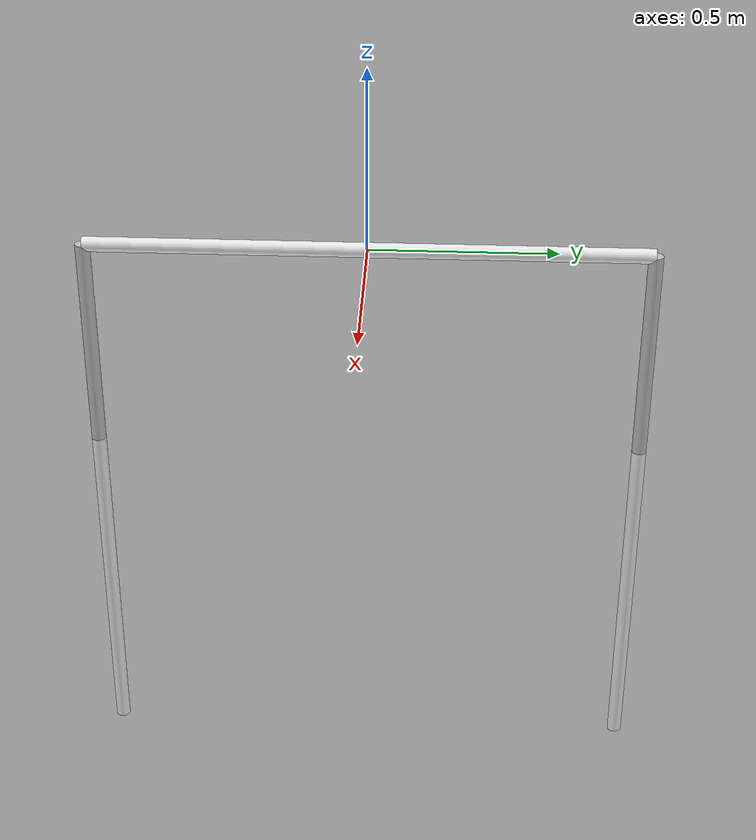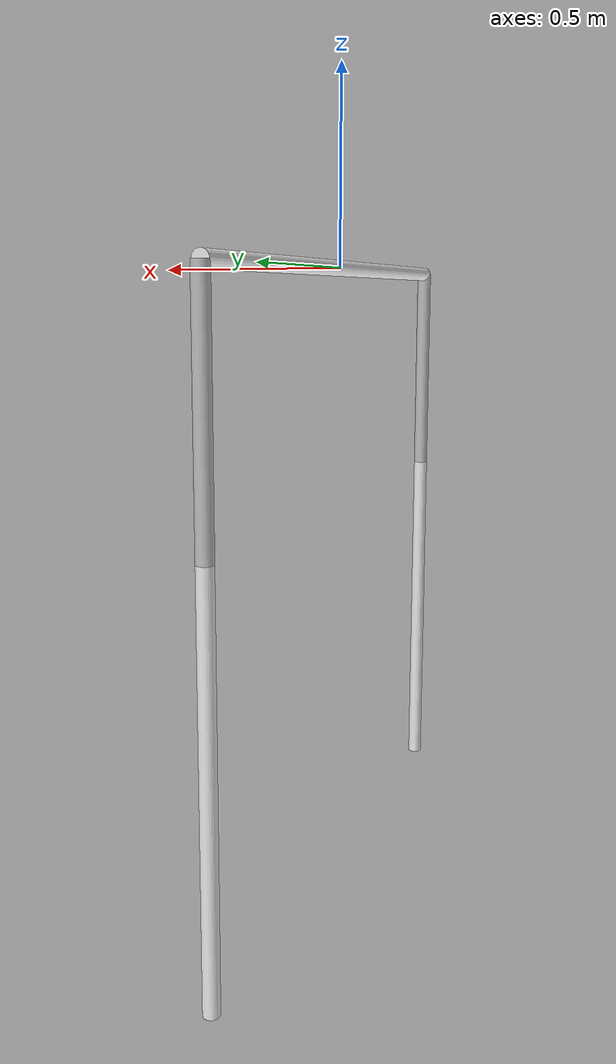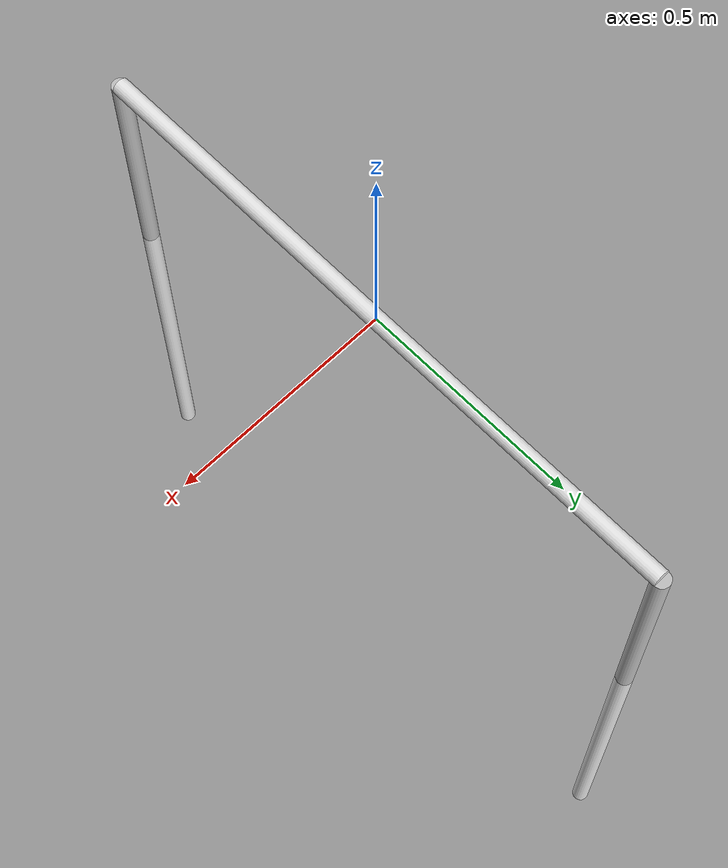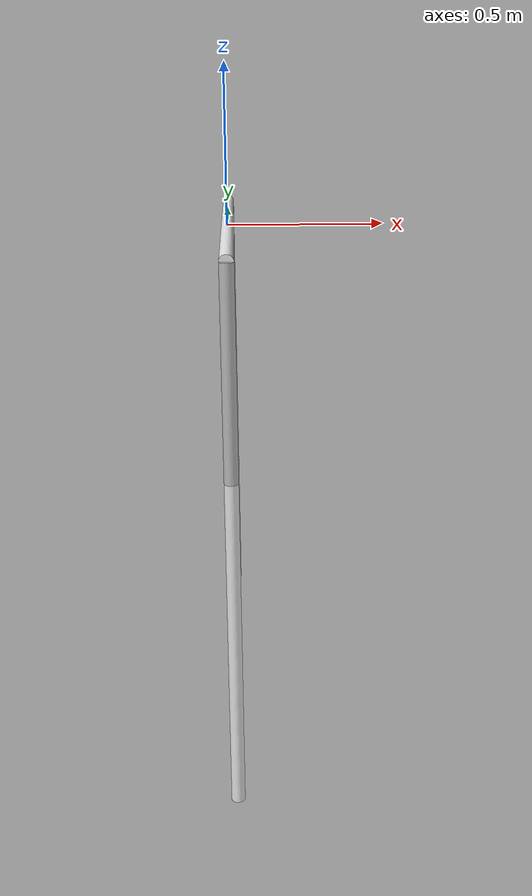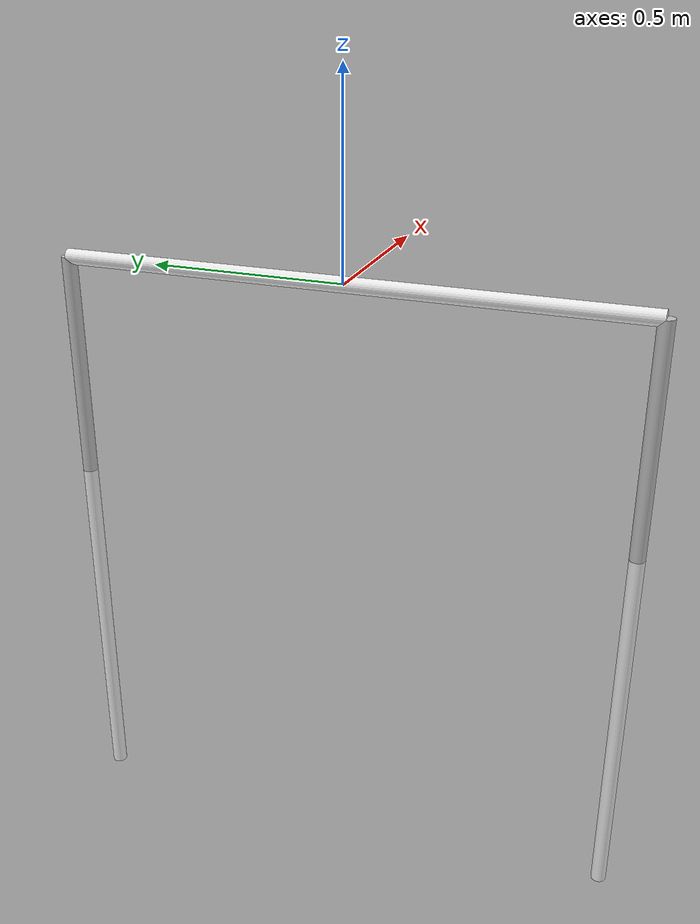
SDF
<?xml version="1.0"?>
<sdf version="1.9">
  <model name="sauvc_qual_gate">
    <static>true</static>
    <plugin filename="gz-sim-label-system" name="gz::sim::systems::Label">
      <label>1</label>
    </plugin>
    <link name="top_bar">
      <pose>0 0 0 1.570796 0 0</pose>
      <inertial>
        <pose>0 0 0 0 0 0</pose>
        <mass>1</mass>
        <inertia>
          <ixx>0.1876</ixx><ixy>0</ixy><ixz>0</ixz>
          <iyy>0.1876</iyy><iyz>0</iyz>
          <izz>0.0002</izz>
        </inertia>
      </inertial>
      <visual name="top_bar_visual">
        <pose>0 0 0 0 0 0</pose>
        <geometry><cylinder><radius>0.02</radius><length>1.5</length></cylinder></geometry>
        <material>
          <ambient>0.92 0.92 0.92 1</ambient>
          <diffuse>0.92 0.92 0.92 1</diffuse>
          <specular>0.2 0.2 0.2 1</specular>
          <emissive>0.23 0.23 0.23 1</emissive>
        </material>
      </visual>
      <collision name="top_bar_collision">
        <pose>0 0 0 0 0 0</pose>
        <geometry><cylinder><radius>0.02</radius><length>1.5</length></cylinder></geometry>
      </collision>
    </link>
    <link name="post_port_marking">
      <pose>0 0.75 -0.3 0 0 0</pose>
      <inertial>
        <pose>0 0 0 0 0 0</pose>
        <mass>0.5</mass>
        <inertia>
          <ixx>0.01505</ixx><ixy>0</ixy><ixz>0</ixz>
          <iyy>0.01505</iyy><iyz>0</iyz>
          <izz>0.0001</izz>
        </inertia>
      </inertial>
      <visual name="post_port_marking_visual">
        <pose>0 0 0 0 0 0</pose>
        <geometry><cylinder><radius>0.02</radius><length>0.6</length></cylinder></geometry>
        <material>
          <ambient>0.75 0.75 0.75 1</ambient>
          <diffuse>0.75 0.75 0.75 1</diffuse>
          <specular>0.25 0.25 0.25 1</specular>
          <emissive>0.12 0.12 0.12 1</emissive>
          <pbr>
            <metal>
              <albedo_map>model://sauvc_textures/gate_stripe_orange.png</albedo_map>
              <metalness>0.0</metalness>
              <roughness_map>model://sauvc_textures/rough_pvc.png</roughness_map>
              <normal_map>model://sauvc_textures/norm_pvc.png</normal_map>
            </metal>
          </pbr>
        </material>
      </visual>
      <collision name="post_port_marking_collision">
        <pose>0 0 0 0 0 0</pose>
        <geometry><cylinder><radius>0.02</radius><length>0.6</length></cylinder></geometry>
      </collision>
    </link>
    <link name="post_port_lower">
      <pose>0 0.75 -1.1 0 0 0</pose>
      <inertial>
        <pose>0 0 0 0 0 0</pose>
        <mass>0.5</mass>
        <inertia>
          <ixx>0.0417167</ixx><ixy>0</ixy><ixz>0</ixz>
          <iyy>0.0417167</iyy><iyz>0</iyz>
          <izz>0.0001</izz>
        </inertia>
      </inertial>
      <visual name="post_port_lower_visual">
        <pose>0 0 0 0 0 0</pose>
        <geometry><cylinder><radius>0.02</radius><length>1</length></cylinder></geometry>
        <material>
          <ambient>0.92 0.92 0.92 1</ambient>
          <diffuse>0.92 0.92 0.92 1</diffuse>
          <specular>0.2 0.2 0.2 1</specular>
          <emissive>0.23 0.23 0.23 1</emissive>
        </material>
      </visual>
      <collision name="post_port_lower_collision">
        <pose>0 0 0 0 0 0</pose>
        <geometry><cylinder><radius>0.02</radius><length>1</length></cylinder></geometry>
      </collision>
    </link>
    <link name="post_starboard_marking">
      <pose>0 -0.75 -0.3 0 0 0</pose>
      <inertial>
        <pose>0 0 0 0 0 0</pose>
        <mass>0.5</mass>
        <inertia>
          <ixx>0.01505</ixx><ixy>0</ixy><ixz>0</ixz>
          <iyy>0.01505</iyy><iyz>0</iyz>
          <izz>0.0001</izz>
        </inertia>
      </inertial>
      <visual name="post_starboard_marking_visual">
        <pose>0 0 0 0 0 0</pose>
        <geometry><cylinder><radius>0.02</radius><length>0.6</length></cylinder></geometry>
        <material>
          <ambient>0.75 0.75 0.75 1</ambient>
          <diffuse>0.75 0.75 0.75 1</diffuse>
          <specular>0.25 0.25 0.25 1</specular>
          <emissive>0.12 0.12 0.12 1</emissive>
          <pbr>
            <metal>
              <albedo_map>model://sauvc_textures/gate_stripe_orange.png</albedo_map>
              <metalness>0.0</metalness>
              <roughness_map>model://sauvc_textures/rough_pvc.png</roughness_map>
              <normal_map>model://sauvc_textures/norm_pvc.png</normal_map>
            </metal>
          </pbr>
        </material>
      </visual>
      <collision name="post_starboard_marking_collision">
        <pose>0 0 0 0 0 0</pose>
        <geometry><cylinder><radius>0.02</radius><length>0.6</length></cylinder></geometry>
      </collision>
    </link>
    <link name="post_starboard_lower">
      <pose>0 -0.75 -1.1 0 0 0</pose>
      <inertial>
        <pose>0 0 0 0 0 0</pose>
        <mass>0.5</mass>
        <inertia>
          <ixx>0.0417167</ixx><ixy>0</ixy><ixz>0</ixz>
          <iyy>0.0417167</iyy><iyz>0</iyz>
          <izz>0.0001</izz>
        </inertia>
      </inertial>
      <visual name="post_starboard_lower_visual">
        <pose>0 0 0 0 0 0</pose>
        <geometry><cylinder><radius>0.02</radius><length>1</length></cylinder></geometry>
        <material>
          <ambient>0.92 0.92 0.92 1</ambient>
          <diffuse>0.92 0.92 0.92 1</diffuse>
          <specular>0.2 0.2 0.2 1</specular>
          <emissive>0.23 0.23 0.23 1</emissive>
        </material>
      </visual>
      <collision name="post_starboard_lower_collision">
        <pose>0 0 0 0 0 0</pose>
        <geometry><cylinder><radius>0.02</radius><length>1</length></cylinder></geometry>
      </collision>
    </link>
  </model>
</sdf>
